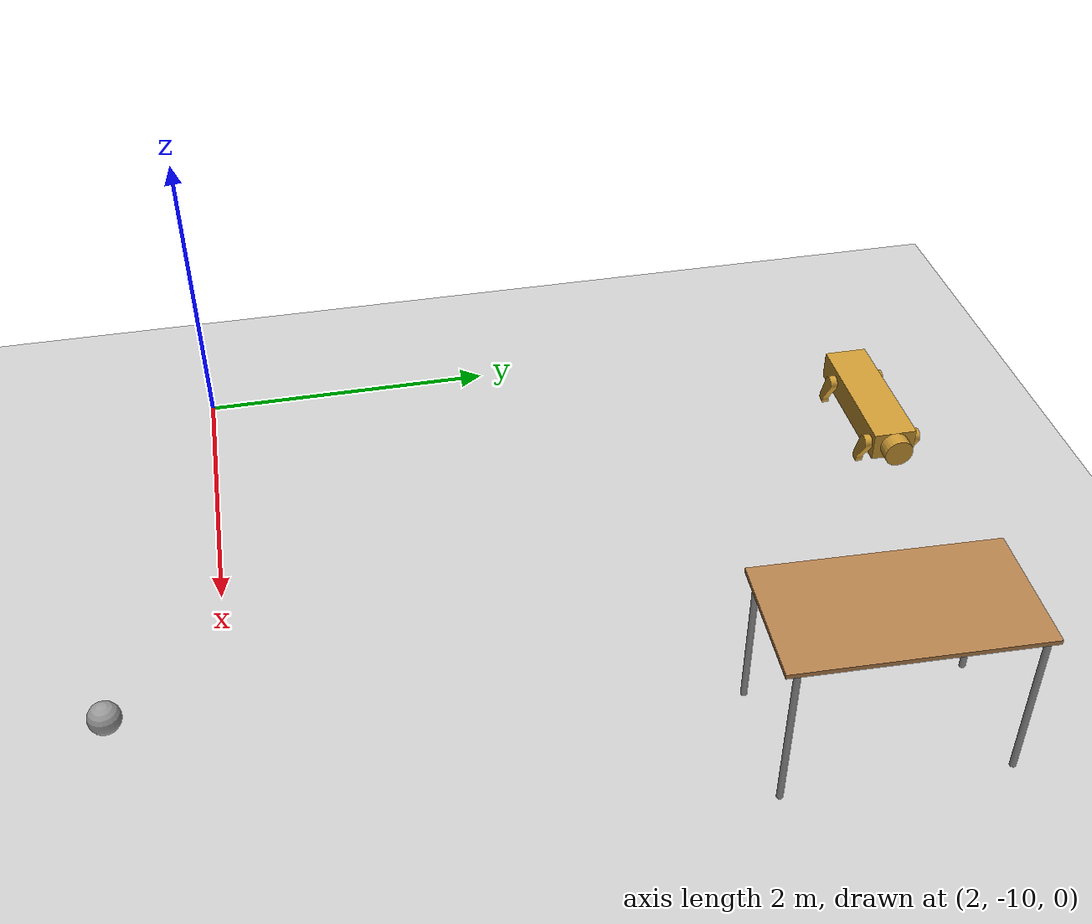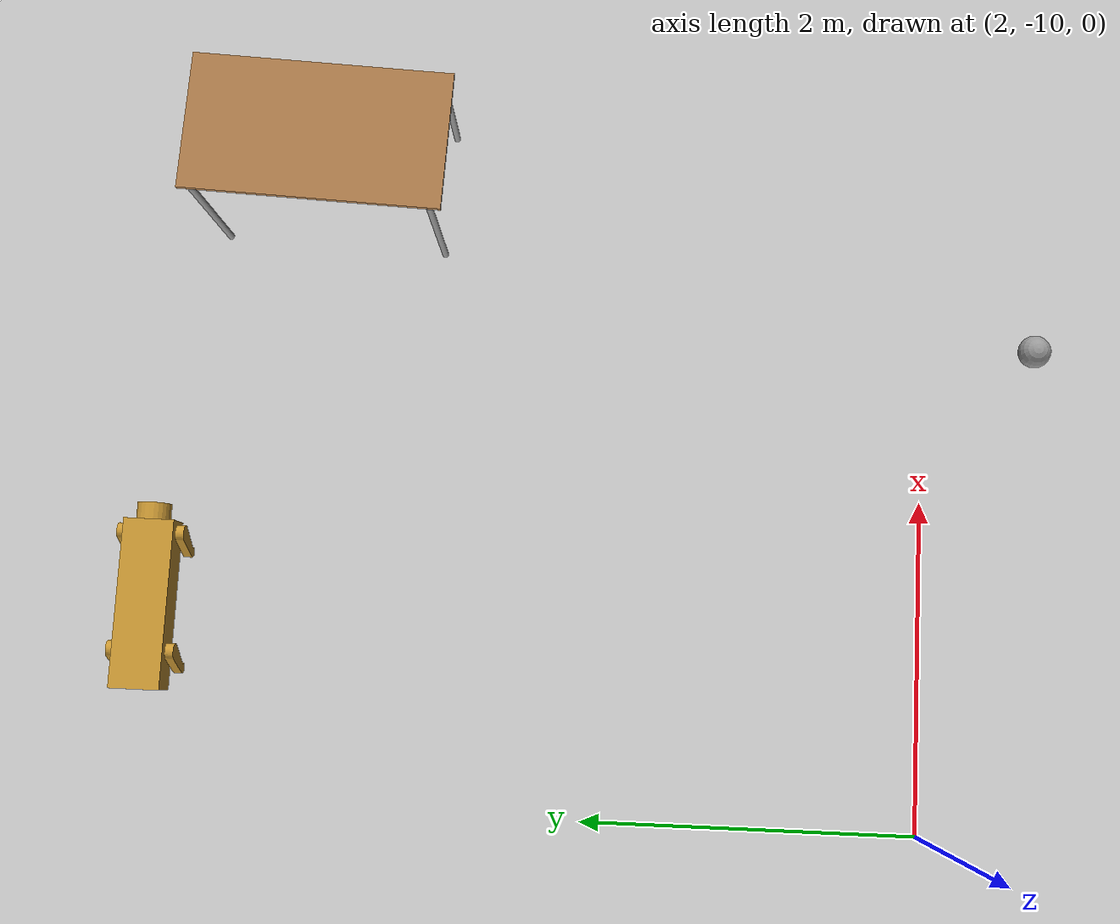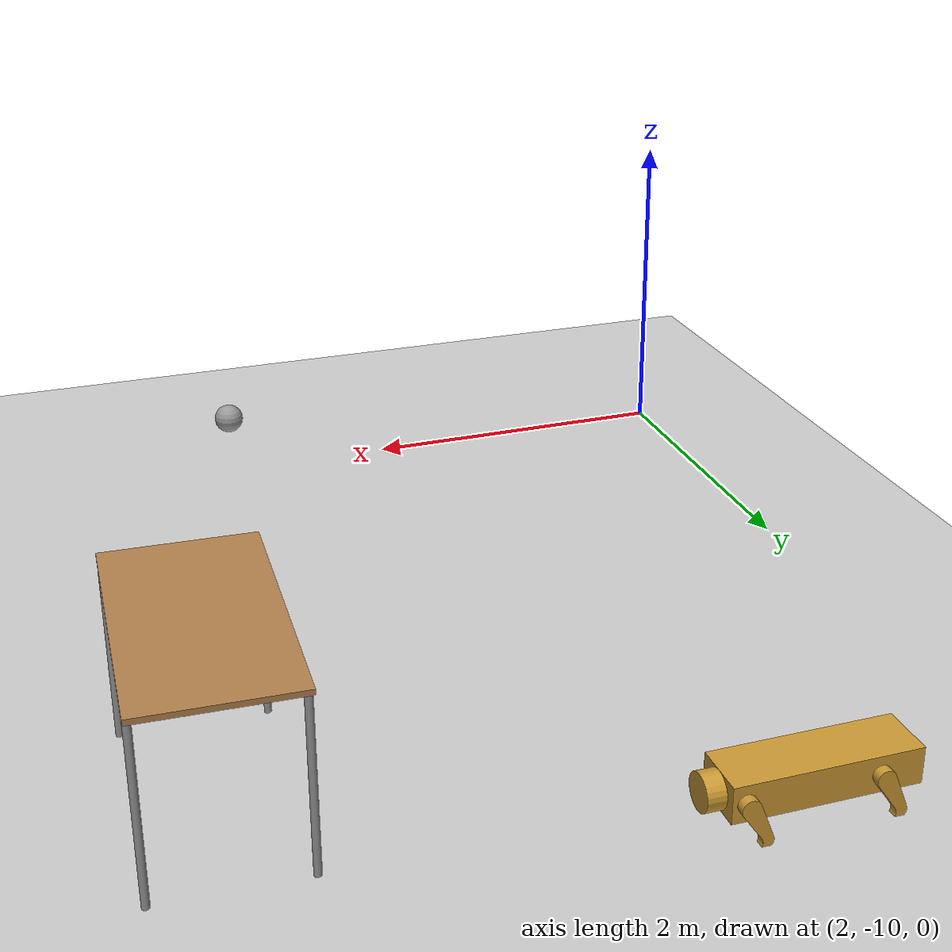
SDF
<sdf version="1.6">
 <world name="default">
  <model name="ground_plane">
   <static>1</static>
   <link name="link">
    <collision name="collision">
     <geometry><plane><normal>0 0 1</normal><size>100 100</size></plane></geometry>
     <surface><friction><ode><mu>100</mu><mu2>50</mu2></ode></friction></surface>
    </collision>
    <visual name="visual">
     <cast_shadows>0</cast_shadows>
     <geometry><plane><normal>0 0 1</normal><size>100 100</size></plane></geometry>
     <material>
      <script><uri>file://media/materials/scripts/gazebo.material</uri><name>Gazebo/Grey</name></script>
     </material>
    </visual>
   </link>
  </model>
  <model name="robodog_clone">
   <link name="link_0">
    <pose>-0.058333 -0.016667 0.333318 0 -0 0</pose>
    <inertial>
     <mass>1</mass>
     <inertia>
      <ixx>0.166667</ixx>
      <ixy>0</ixy>
      <ixz>0</ixz>
      <iyy>0.166667</iyy>
      <iyz>0</iyz>
      <izz>0.166667</izz>
     </inertia>
    </inertial>
    <visual name="visual">
     <geometry><box><size>1 0.3 0.2</size></box></geometry>
     <material>
      <lighting>1</lighting>
      <script><uri>file://media/materials/scripts/gazebo.material</uri><name>Gazebo/Grey</name></script>
      <shader type="pixel"><normal_map>__default__</normal_map></shader>
      <ambient>0.8 0.6 0.2 1</ambient>
      <diffuse>0.6 0.6 0.6 1</diffuse>
      <specular>0.01 0.01 0.01 1</specular>
      <emissive>0 0 0 1</emissive>
     </material>
    </visual>
    <collision name="collision">
     <geometry><box><size>1 0.3 0.2</size></box></geometry>
     <surface>
      <friction>
       <ode><mu>1</mu><mu2>1</mu2><fdir1>0 0 0</fdir1><slip1>0</slip1><slip2>0</slip2></ode>
       <torsional>
        <coefficient>1</coefficient>
        <patch_radius>0</patch_radius>
        <surface_radius>0</surface_radius>
        <use_patch_radius>1</use_patch_radius>
        <ode><slip>0</slip></ode>
       </torsional>
      </friction>
      <bounce><restitution_coefficient>0</restitution_coefficient><threshold>1e+06</threshold></bounce>
      <contact>
       <collide_without_contact>0</collide_without_contact>
       <collide_without_contact_bitmask>1</collide_without_contact_bitmask>
       <collide_bitmask>1</collide_bitmask>
       <ode>
        <soft_cfm>0</soft_cfm>
        <soft_erp>0.2</soft_erp>
        <kp>1e+13</kp>
        <kd>1</kd>
        <max_vel>0.01</max_vel>
        <min_depth>0</min_depth>
       </ode>
       <bullet>
        <split_impulse>1</split_impulse>
        <split_impulse_penetration_threshold>-0.01</split_impulse_penetration_threshold>
        <soft_cfm>0</soft_cfm>
        <soft_erp>0.2</soft_erp>
        <kp>1e+13</kp>
        <kd>1</kd>
       </bullet>
      </contact>
     </surface>
    </collision>
   </link>
   <link name="link_4">
    <pose>-0.458333 -0.166667 -0.166682 1.57 -0 0</pose>
    <inertial>
     <mass>1</mass>
     <inertia>
      <ixx>0.166667</ixx>
      <ixy>0</ixy>
      <ixz>0</ixz>
      <iyy>0.166667</iyy>
      <iyz>0</iyz>
      <izz>0.166667</izz>
     </inertia>
    </inertial>
    <visual name="visual">
     <geometry>
      <mesh>
       <uri>/home/robond/workspace/catkin_ws/src/Go_Chase_It/my_robot/meshes/RoboLeg.STL</uri>
       <scale>0.01 0.01 0.01</scale>
      </mesh>
     </geometry>
     <material>
      <lighting>1</lighting>
      <script><uri>file://media/materials/scripts/gazebo.material</uri><name>Gazebo/Grey</name></script>
      <shader type="pixel"><normal_map>__default__</normal_map></shader>
      <ambient>0.8 0.6 0.2 1</ambient>
      <diffuse>0.6 0.6 0.6 1</diffuse>
      <specular>0.01 0.01 0.01 1</specular>
      <emissive>0 0 0 1</emissive>
     </material>
    </visual>
    <collision name="collision">
     <geometry>
      <mesh>
       <uri>/home/robond/workspace/catkin_ws/src/Go_Chase_It/my_robot/meshes/RoboLeg.STL</uri>
       <scale>0.01 0.01 0.01</scale>
      </mesh>
     </geometry>
     <surface>
      <friction>
       <ode><mu>1</mu><mu2>1</mu2><fdir1>0 0 0</fdir1><slip1>0</slip1><slip2>0</slip2></ode>
       <torsional>
        <coefficient>1</coefficient>
        <patch_radius>0</patch_radius>
        <surface_radius>0</surface_radius>
        <use_patch_radius>1</use_patch_radius>
        <ode><slip>0</slip></ode>
       </torsional>
      </friction>
      <bounce><restitution_coefficient>0</restitution_coefficient><threshold>1e+06</threshold></bounce>
      <contact>
       <collide_without_contact>0</collide_without_contact>
       <collide_without_contact_bitmask>1</collide_without_contact_bitmask>
       <collide_bitmask>1</collide_bitmask>
       <ode>
        <soft_cfm>0</soft_cfm>
        <soft_erp>0.2</soft_erp>
        <kp>1e+13</kp>
        <kd>1</kd>
        <max_vel>0.01</max_vel>
        <min_depth>0</min_depth>
       </ode>
       <bullet>
        <split_impulse>1</split_impulse>
        <split_impulse_penetration_threshold>-0.01</split_impulse_penetration_threshold>
        <soft_cfm>0</soft_cfm>
        <soft_erp>0.2</soft_erp>
        <kp>1e+13</kp>
        <kd>1</kd>
       </bullet>
      </contact>
     </surface>
    </collision>
   </link>
   <link name="link_4_clone">
    <pose>-0.458333 0.183333 -0.166682 1.57 -0 0</pose>
    <inertial>
     <mass>1</mass>
     <inertia>
      <ixx>0.166667</ixx>
      <ixy>0</ixy>
      <ixz>0</ixz>
      <iyy>0.166667</iyy>
      <iyz>0</iyz>
      <izz>0.166667</izz>
     </inertia>
    </inertial>
    <visual name="visual">
     <geometry>
      <mesh>
       <uri>/home/robond/workspace/catkin_ws/src/Go_Chase_It/my_robot/meshes/RoboLeg.STL</uri>
       <scale>0.01 0.01 0.01</scale>
      </mesh>
     </geometry>
     <material>
      <lighting>1</lighting>
      <script><uri>file://media/materials/scripts/gazebo.material</uri><name>Gazebo/Grey</name></script>
      <shader type="pixel"><normal_map>__default__</normal_map></shader>
      <ambient>0.8 0.6 0.2 1</ambient>
      <diffuse>0.6 0.6 0.6 1</diffuse>
      <specular>0.01 0.01 0.01 1</specular>
      <emissive>0 0 0 1</emissive>
     </material>
    </visual>
    <collision name="collision">
     <geometry>
      <mesh>
       <uri>/home/robond/workspace/catkin_ws/src/Go_Chase_It/my_robot/meshes/RoboLeg.STL</uri>
       <scale>0.01 0.01 0.01</scale>
      </mesh>
     </geometry>
     <surface>
      <friction>
       <ode><mu>1</mu><mu2>1</mu2><fdir1>0 0 0</fdir1><slip1>0</slip1><slip2>0</slip2></ode>
       <torsional>
        <coefficient>1</coefficient>
        <patch_radius>0</patch_radius>
        <surface_radius>0</surface_radius>
        <use_patch_radius>1</use_patch_radius>
        <ode><slip>0</slip></ode>
       </torsional>
      </friction>
      <bounce><restitution_coefficient>0</restitution_coefficient><threshold>1e+06</threshold></bounce>
      <contact>
       <collide_without_contact>0</collide_without_contact>
       <collide_without_contact_bitmask>1</collide_without_contact_bitmask>
       <collide_bitmask>1</collide_bitmask>
       <ode>
        <soft_cfm>0</soft_cfm>
        <soft_erp>0.2</soft_erp>
        <kp>1e+13</kp>
        <kd>1</kd>
        <max_vel>0.01</max_vel>
        <min_depth>0</min_depth>
       </ode>
       <bullet>
        <split_impulse>1</split_impulse>
        <split_impulse_penetration_threshold>-0.01</split_impulse_penetration_threshold>
        <soft_cfm>0</soft_cfm>
        <soft_erp>0.2</soft_erp>
        <kp>1e+13</kp>
        <kd>1</kd>
       </bullet>
      </contact>
     </surface>
    </collision>
   </link>
   <link name="link_4_clone_0">
    <pose>0.241667 0.183333 -0.166682 1.57 -0 0</pose>
    <inertial>
     <mass>1</mass>
     <inertia>
      <ixx>0.166667</ixx>
      <ixy>0</ixy>
      <ixz>0</ixz>
      <iyy>0.166667</iyy>
      <iyz>0</iyz>
      <izz>0.166667</izz>
     </inertia>
    </inertial>
    <visual name="visual">
     <geometry>
      <mesh>
       <uri>/home/robond/workspace/catkin_ws/src/Go_Chase_It/my_robot/meshes/RoboLeg.STL</uri>
       <scale>0.01 0.01 0.01</scale>
      </mesh>
     </geometry>
     <material>
      <lighting>1</lighting>
      <script><uri>file://media/materials/scripts/gazebo.material</uri><name>Gazebo/Grey</name></script>
      <shader type="pixel"><normal_map>__default__</normal_map></shader>
      <ambient>0.8 0.6 0.2 1</ambient>
      <diffuse>0.6 0.6 0.6 1</diffuse>
      <specular>0.01 0.01 0.01 1</specular>
      <emissive>0 0 0 1</emissive>
     </material>
    </visual>
    <collision name="collision">
     <geometry>
      <mesh>
       <uri>/home/robond/workspace/catkin_ws/src/Go_Chase_It/my_robot/meshes/RoboLeg.STL</uri>
       <scale>0.01 0.01 0.01</scale>
      </mesh>
     </geometry>
     <surface>
      <friction>
       <ode><mu>1</mu><mu2>1</mu2><fdir1>0 0 0</fdir1><slip1>0</slip1><slip2>0</slip2></ode>
       <torsional>
        <coefficient>1</coefficient>
        <patch_radius>0</patch_radius>
        <surface_radius>0</surface_radius>
        <use_patch_radius>1</use_patch_radius>
        <ode><slip>0</slip></ode>
       </torsional>
      </friction>
      <bounce><restitution_coefficient>0</restitution_coefficient><threshold>1e+06</threshold></bounce>
      <contact>
       <collide_without_contact>0</collide_without_contact>
       <collide_without_contact_bitmask>1</collide_without_contact_bitmask>
       <collide_bitmask>1</collide_bitmask>
       <ode>
        <soft_cfm>0</soft_cfm>
        <soft_erp>0.2</soft_erp>
        <kp>1e+13</kp>
        <kd>1</kd>
        <max_vel>0.01</max_vel>
        <min_depth>0</min_depth>
       </ode>
       <bullet>
        <split_impulse>1</split_impulse>
        <split_impulse_penetration_threshold>-0.01</split_impulse_penetration_threshold>
        <soft_cfm>0</soft_cfm>
        <soft_erp>0.2</soft_erp>
        <kp>1e+13</kp>
        <kd>1</kd>
       </bullet>
      </contact>
     </surface>
    </collision>
   </link>
   <link name="link_4_clone_1">
    <pose>0.241667 -0.166667 -0.166682 1.57 -0 0</pose>
    <inertial>
     <mass>1</mass>
     <inertia>
      <ixx>0.166667</ixx>
      <ixy>0</ixy>
      <ixz>0</ixz>
      <iyy>0.166667</iyy>
      <iyz>0</iyz>
      <izz>0.166667</izz>
     </inertia>
    </inertial>
    <visual name="visual">
     <geometry>
      <mesh>
       <uri>/home/robond/workspace/catkin_ws/src/Go_Chase_It/my_robot/meshes/RoboLeg.STL</uri>
       <scale>0.01 0.01 0.01</scale>
      </mesh>
     </geometry>
     <material>
      <lighting>1</lighting>
      <script><uri>file://media/materials/scripts/gazebo.material</uri><name>Gazebo/Grey</name></script>
      <shader type="pixel"><normal_map>__default__</normal_map></shader>
      <ambient>0.8 0.6 0.2 1</ambient>
      <diffuse>0.6 0.6 0.6 1</diffuse>
      <specular>0.01 0.01 0.01 1</specular>
      <emissive>0 0 0 1</emissive>
     </material>
    </visual>
    <collision name="collision">
     <geometry>
      <mesh>
       <uri>/home/robond/workspace/catkin_ws/src/Go_Chase_It/my_robot/meshes/RoboLeg.STL</uri>
       <scale>0.01 0.01 0.01</scale>
      </mesh>
     </geometry>
     <surface>
      <friction>
       <ode><mu>1</mu><mu2>1</mu2><fdir1>0 0 0</fdir1><slip1>0</slip1><slip2>0</slip2></ode>
       <torsional>
        <coefficient>1</coefficient>
        <patch_radius>0</patch_radius>
        <surface_radius>0</surface_radius>
        <use_patch_radius>1</use_patch_radius>
        <ode><slip>0</slip></ode>
       </torsional>
      </friction>
      <bounce><restitution_coefficient>0</restitution_coefficient><threshold>1e+06</threshold></bounce>
      <contact>
       <collide_without_contact>0</collide_without_contact>
       <collide_without_contact_bitmask>1</collide_without_contact_bitmask>
       <collide_bitmask>1</collide_bitmask>
       <ode>
        <soft_cfm>0</soft_cfm>
        <soft_erp>0.2</soft_erp>
        <kp>1e+13</kp>
        <kd>1</kd>
        <max_vel>0.01</max_vel>
        <min_depth>0</min_depth>
       </ode>
       <bullet>
        <split_impulse>1</split_impulse>
        <split_impulse_penetration_threshold>-0.01</split_impulse_penetration_threshold>
        <soft_cfm>0</soft_cfm>
        <soft_erp>0.2</soft_erp>
        <kp>1e+13</kp>
        <kd>1</kd>
       </bullet>
      </contact>
     </surface>
    </collision>
   </link>
   <link name="link_5">
    <pose>0.491667 -0.016667 0.333318 -3.14159 1.57 -3.14159</pose>
    <inertial>
     <mass>1</mass>
     <inertia><ixx>0.145833</ixx><ixy>0</ixy><ixz>0</ixz><iyy>0.145833</iyy><iyz>0</iyz><izz>0.125</izz></inertia>
    </inertial>
    <visual name="visual">
     <geometry><cylinder><radius>0.1</radius><length>0.1</length></cylinder></geometry>
     <material>
      <lighting>1</lighting>
      <script><uri>file://media/materials/scripts/gazebo.material</uri><name>Gazebo/Grey</name></script>
      <shader type="pixel"><normal_map>__default__</normal_map></shader>
      <ambient>0.8 0.6 0.2 1</ambient>
      <diffuse>0.6 0.6 0.6 1</diffuse>
      <specular>0.01 0.01 0.01 1</specular>
      <emissive>0 0 0 1</emissive>
     </material>
    </visual>
    <collision name="collision">
     <geometry><cylinder><radius>0.1</radius><length>0.1</length></cylinder></geometry>
     <surface>
      <friction>
       <ode><mu>1</mu><mu2>1</mu2><fdir1>0 0 0</fdir1><slip1>0</slip1><slip2>0</slip2></ode>
       <torsional>
        <coefficient>1</coefficient>
        <patch_radius>0</patch_radius>
        <surface_radius>0</surface_radius>
        <use_patch_radius>1</use_patch_radius>
        <ode><slip>0</slip></ode>
       </torsional>
      </friction>
      <bounce><restitution_coefficient>0</restitution_coefficient><threshold>1e+06</threshold></bounce>
      <contact>
       <collide_without_contact>0</collide_without_contact>
       <collide_without_contact_bitmask>1</collide_without_contact_bitmask>
       <collide_bitmask>1</collide_bitmask>
       <ode>
        <soft_cfm>0</soft_cfm>
        <soft_erp>0.2</soft_erp>
        <kp>1e+13</kp>
        <kd>1</kd>
        <max_vel>0.01</max_vel>
        <min_depth>0</min_depth>
       </ode>
       <bullet>
        <split_impulse>1</split_impulse>
        <split_impulse_penetration_threshold>-0.01</split_impulse_penetration_threshold>
        <soft_cfm>0</soft_cfm>
        <soft_erp>0.2</soft_erp>
        <kp>1e+13</kp>
        <kd>1</kd>
       </bullet>
      </contact>
     </surface>
    </collision>
   </link>
   <joint name="link_0_JOINT_0" type="revolute">
    <parent>link_0</parent>
    <child>link_4</child>
    <pose>0.12 0.49 0.025 0 -0 0</pose>
    <axis>
     <xyz>0 0 1</xyz>
     <use_parent_model_frame>0</use_parent_model_frame>
     <limit>
      <lower>-1.79769e+308</lower>
      <upper>1.79769e+308</upper>
      <effort>-1</effort>
      <velocity>-1</velocity>
     </limit>
     <dynamics>
      <spring_reference>0</spring_reference>
      <spring_stiffness>0</spring_stiffness>
      <damping>0</damping>
      <friction>0</friction>
     </dynamics>
    </axis>
    <physics>
     <ode><limit><cfm>0</cfm><erp>0.2</erp></limit><suspension><cfm>0</cfm><erp>0.2</erp></suspension></ode>
    </physics>
   </joint>
   <joint name="link_0_JOINT_1" type="revolute">
    <parent>link_0</parent>
    <child>link_4_clone_1</child>
    <pose>0.12 0.49 0.025 0 -0 0</pose>
    <axis>
     <xyz>0 0 1</xyz>
     <use_parent_model_frame>0</use_parent_model_frame>
     <limit>
      <lower>-1.79769e+308</lower>
      <upper>1.79769e+308</upper>
      <effort>-1</effort>
      <velocity>-1</velocity>
     </limit>
     <dynamics>
      <spring_reference>0</spring_reference>
      <spring_stiffness>0</spring_stiffness>
      <damping>0</damping>
      <friction>0</friction>
     </dynamics>
    </axis>
    <physics>
     <ode><limit><cfm>0</cfm><erp>0.2</erp></limit><suspension><cfm>0</cfm><erp>0.2</erp></suspension></ode>
    </physics>
   </joint>
   <joint name="link_0_JOINT_2" type="revolute">
    <parent>link_0</parent>
    <child>link_4_clone_0</child>
    <pose>0.12 0.49 0.025 0 -0 0</pose>
    <axis>
     <xyz>0 0 1</xyz>
     <use_parent_model_frame>0</use_parent_model_frame>
     <limit>
      <lower>-1.79769e+308</lower>
      <upper>1.79769e+308</upper>
      <effort>-1</effort>
      <velocity>-1</velocity>
     </limit>
     <dynamics>
      <spring_reference>0</spring_reference>
      <spring_stiffness>0</spring_stiffness>
      <damping>0</damping>
      <friction>0</friction>
     </dynamics>
    </axis>
    <physics>
     <ode><limit><cfm>0</cfm><erp>0.2</erp></limit><suspension><cfm>0</cfm><erp>0.2</erp></suspension></ode>
    </physics>
   </joint>
   <joint name="link_0_JOINT_3" type="revolute">
    <parent>link_0</parent>
    <child>link_4_clone</child>
    <pose>0.12 0.49 0.025 0 -0 0</pose>
    <axis>
     <xyz>0 0 1</xyz>
     <use_parent_model_frame>0</use_parent_model_frame>
     <limit>
      <lower>-1.79769e+308</lower>
      <upper>1.79769e+308</upper>
      <effort>-1</effort>
      <velocity>-1</velocity>
     </limit>
     <dynamics>
      <spring_reference>0</spring_reference>
      <spring_stiffness>0</spring_stiffness>
      <damping>0</damping>
      <friction>0</friction>
     </dynamics>
    </axis>
    <physics>
     <ode><limit><cfm>0</cfm><erp>0.2</erp></limit><suspension><cfm>0</cfm><erp>0.2</erp></suspension></ode>
    </physics>
   </joint>
   <joint name="link_0_JOINT_4" type="revolute">
    <parent>link_0</parent>
    <child>link_5</child>
    <axis>
     <xyz>0 0 1</xyz>
     <use_parent_model_frame>0</use_parent_model_frame>
     <limit>
      <lower>-1.79769e+308</lower>
      <upper>1.79769e+308</upper>
      <effort>-1</effort>
      <velocity>-1</velocity>
     </limit>
     <dynamics>
      <spring_reference>0</spring_reference>
      <spring_stiffness>0</spring_stiffness>
      <damping>0</damping>
      <friction>0</friction>
     </dynamics>
    </axis>
    <physics>
     <ode><limit><cfm>0</cfm><erp>0.2</erp></limit><suspension><cfm>0</cfm><erp>0.2</erp></suspension></ode>
    </physics>
   </joint>
   <static>0</static>
   <pose>3.22554 -5.34961 -0.117539 0 -4e-06 -0.003985</pose>
  </model>
  <model name="table_clone_0">
   <static>1</static>
   <link name="link">
    <collision name="surface">
     <pose>0 0 1 0 -0 0</pose>
     <geometry><box><size>1.5 0.8 0.03</size></box></geometry>
     <surface><friction><ode><mu>0.6</mu><mu2>0.6</mu2></ode></friction></surface>
    </collision>
    <visual name="visual1">
     <pose>0 0 1 0 -0 0</pose>
     <geometry><box><size>1.5 0.8 0.03</size></box></geometry>
     <material>
      <script><uri>file://media/materials/scripts/gazebo.material</uri><name>Gazebo/Wood</name></script>
     </material>
    </visual>
    <collision name="front_left_leg">
     <pose>0.68 0.38 0.5 0 -0 0</pose>
     <geometry><cylinder><radius>0.02</radius><length>1</length></cylinder></geometry>
    </collision>
    <visual name="front_left_leg">
     <pose>0.68 0.38 0.5 0 -0 0</pose>
     <geometry><cylinder><radius>0.02</radius><length>1</length></cylinder></geometry>
     <material>
      <script><uri>file://media/materials/scripts/gazebo.material</uri><name>Gazebo/Grey</name></script>
     </material>
    </visual>
    <collision name="front_right_leg">
     <pose>0.68 -0.38 0.5 0 -0 0</pose>
     <geometry><cylinder><radius>0.02</radius><length>1</length></cylinder></geometry>
    </collision>
    <visual name="front_right_leg">
     <pose>0.68 -0.38 0.5 0 -0 0</pose>
     <geometry><cylinder><radius>0.02</radius><length>1</length></cylinder></geometry>
     <material>
      <script><uri>file://media/materials/scripts/gazebo.material</uri><name>Gazebo/Grey</name></script>
     </material>
    </visual>
    <collision name="back_right_leg">
     <pose>-0.68 -0.38 0.5 0 -0 0</pose>
     <geometry><cylinder><radius>0.02</radius><length>1</length></cylinder></geometry>
    </collision>
    <visual name="back_right_leg">
     <pose>-0.68 -0.38 0.5 0 -0 0</pose>
     <geometry><cylinder><radius>0.02</radius><length>1</length></cylinder></geometry>
     <material>
      <script><uri>file://media/materials/scripts/gazebo.material</uri><name>Gazebo/Grey</name></script>
     </material>
    </visual>
    <collision name="back_left_leg">
     <pose>-0.68 0.38 0.5 0 -0 0</pose>
     <geometry><cylinder><radius>0.02</radius><length>1</length></cylinder></geometry>
    </collision>
    <visual name="back_left_leg">
     <pose>-0.68 0.38 0.5 0 -0 0</pose>
     <geometry><cylinder><radius>0.02</radius><length>1</length></cylinder></geometry>
     <material>
      <script><uri>file://media/materials/scripts/gazebo.material</uri><name>Gazebo/Grey</name></script>
     </material>
    </visual>
   </link>
   <pose>5.85344 -6.33168 0 0 -0 1.52977</pose>
  </model>
  <model name="my_ball">
   <link name="link_0">
    <inertial>
     <mass>1</mass>
     <inertia><ixx>0.1</ixx><ixy>0</ixy><ixz>0</ixz><iyy>0.1</iyy><iyz>0</iyz><izz>0.1</izz></inertia>
    </inertial>
    <visual name="visual">
     <geometry><sphere><radius>0.1</radius></sphere></geometry>
     <material>
      <lighting>1</lighting>
      <script><uri>file://media/materials/scripts/gazebo.material</uri><name>Gazebo/Grey</name></script>
      <shader type="pixel"><normal_map>__default__</normal_map></shader>
      <ambient>1 1 1 1</ambient>
      <diffuse>1 1 1 1</diffuse>
      <specular>1 1 1 1</specular>
      <emissive>1 1 1 1</emissive>
     </material>
    </visual>
    <collision name="collision">
     <geometry><sphere><radius>0.1</radius></sphere></geometry>
     <surface>
      <friction>
       <ode><mu>1</mu><mu2>1</mu2><fdir1>0 0 0</fdir1><slip1>0</slip1><slip2>0</slip2></ode>
       <torsional>
        <coefficient>1</coefficient>
        <patch_radius>0</patch_radius>
        <surface_radius>0</surface_radius>
        <use_patch_radius>1</use_patch_radius>
        <ode><slip>0</slip></ode>
       </torsional>
      </friction>
      <bounce><restitution_coefficient>0</restitution_coefficient><threshold>1e+06</threshold></bounce>
      <contact>
       <collide_without_contact>0</collide_without_contact>
       <collide_without_contact_bitmask>1</collide_without_contact_bitmask>
       <collide_bitmask>1</collide_bitmask>
       <ode>
        <soft_cfm>0</soft_cfm>
        <soft_erp>0.2</soft_erp>
        <kp>1e+13</kp>
        <kd>1</kd>
        <max_vel>0.01</max_vel>
        <min_depth>0</min_depth>
       </ode>
       <bullet>
        <split_impulse>1</split_impulse>
        <split_impulse_penetration_threshold>-0.01</split_impulse_penetration_threshold>
        <soft_cfm>0</soft_cfm>
        <soft_erp>0.2</soft_erp>
        <kp>1e+13</kp>
        <kd>1</kd>
       </bullet>
      </contact>
     </surface>
    </collision>
   </link>
   <static>0</static>
   <pose>4.96472 -10.6789 0.1 0 -0 0</pose>
  </model>
 </world>
</sdf>
